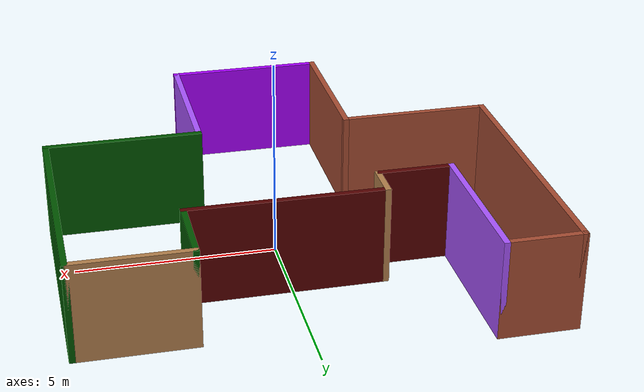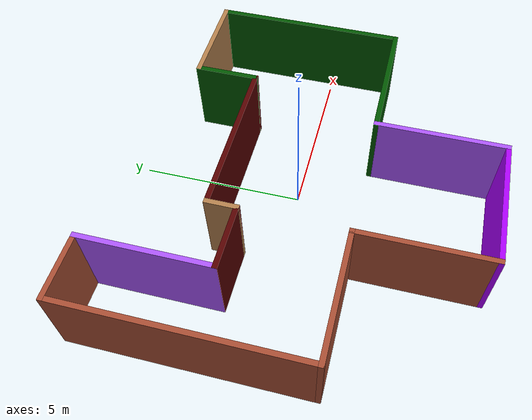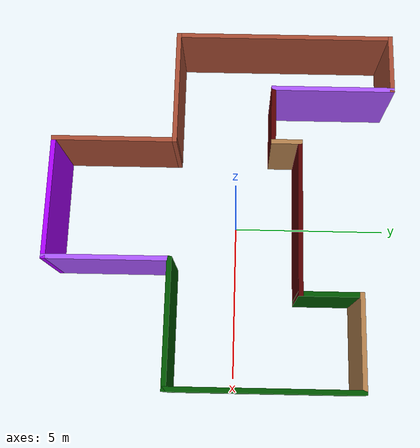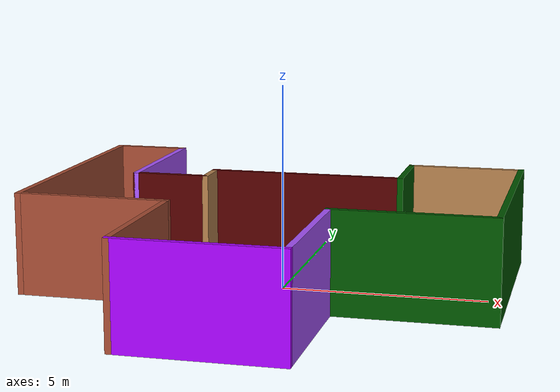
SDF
<?xml version='1.0'?>
<sdf version='1.6'>
  <model name='building'>
    <pose frame=''>-0.3 -0.425 0 0 -0 0</pose>
    <link name='Wall_10'>
      <collision name='Wall_10_Collision'>
        <geometry>
          <box>
            <size>2 0.15 2.5</size>
          </box>
        </geometry>
        <pose frame=''>0 0 1.25 0 -0 0</pose>
      </collision>
      <visual name='Wall_10_Visual'>
        <pose frame=''>0 0 1.25 0 -0 0</pose>
        <geometry>
          <box>
            <size>2 0.15 2.5</size>
          </box>
        </geometry>
        <material>
          <script>
            <uri>file://media/materials/scripts/gazebo.material</uri>
            <name>Gazebo/Grey</name>
          </script>
          <ambient>0 0.333333 0 1</ambient>
        </material>
        <meta>
          <layer>0</layer>
        </meta>
      </visual>
      <pose frame=''>2.85 3.35 0 0 -0 1.5708</pose>
    </link>
    <link name='Wall_11'>
      <collision name='Wall_11_Collision'>
        <geometry>
          <box>
            <size>3 0.15 2.5</size>
          </box>
        </geometry>
        <pose frame=''>0 0 1.25 0 -0 0</pose>
      </collision>
      <visual name='Wall_11_Visual'>
        <pose frame=''>0 0 1.25 0 -0 0</pose>
        <geometry>
          <box>
            <size>3 0.15 2.5</size>
          </box>
        </geometry>
        <material>
          <script>
            <uri>file://media/materials/scripts/gazebo.material</uri>
            <name>Gazebo/Wood</name>
          </script>
          <ambient>1 1 1 1</ambient>
        </material>
        <meta>
          <layer>0</layer>
        </meta>
      </visual>
      <pose frame=''>4.275 4.275 0 0 -0 0</pose>
    </link>
    <link name='Wall_12'>
      <collision name='Wall_12_Collision'>
        <geometry>
          <box>
            <size>6 0.15 2.5</size>
          </box>
        </geometry>
        <pose frame=''>0 0 1.25 0 -0 0</pose>
      </collision>
      <visual name='Wall_12_Visual'>
        <pose frame=''>0 0 1.25 0 -0 0</pose>
        <geometry>
          <box>
            <size>6 0.15 2.5</size>
          </box>
        </geometry>
        <material>
          <script>
            <uri>file://media/materials/scripts/gazebo.material</uri>
            <name>Gazebo/Grey</name>
          </script>
          <ambient>0 0.333333 0 1</ambient>
        </material>
        <meta>
          <layer>0</layer>
        </meta>
      </visual>
      <pose frame=''>5.7 1.35 0 0 0 -1.5708</pose>
    </link>
    <link name='Wall_13'>
      <collision name='Wall_13_Collision'>
        <geometry>
          <box>
            <size>4 0.15 2.5</size>
          </box>
        </geometry>
        <pose frame=''>0 0 1.25 0 -0 0</pose>
      </collision>
      <visual name='Wall_13_Visual'>
        <pose frame=''>0 0 1.25 0 -0 0</pose>
        <geometry>
          <box>
            <size>4 0.15 2.5</size>
          </box>
        </geometry>
        <material>
          <script>
            <uri>file://media/materials/scripts/gazebo.material</uri>
            <name>Gazebo/Grey</name>
          </script>
          <ambient>0 0.333333 0 1</ambient>
        </material>
        <meta>
          <layer>0</layer>
        </meta>
      </visual>
      <pose frame=''>3.775 -1.575 0 0 -0 3.14159</pose>
    </link>
    <link name='Wall_14'>
      <collision name='Wall_14_Collision'>
        <geometry>
          <box>
            <size>4 0.15 2.5</size>
          </box>
        </geometry>
        <pose frame=''>0 0 1.25 0 -0 0</pose>
      </collision>
      <visual name='Wall_14_Visual'>
        <pose frame=''>0 0 1.25 0 -0 0</pose>
        <geometry>
          <box>
            <size>4 0.15 2.5</size>
          </box>
        </geometry>
        <material>
          <script>
            <uri>file://media/materials/scripts/gazebo.material</uri>
            <name>Gazebo/Grey</name>
          </script>
          <ambient>0.666667 0.333333 1 1</ambient>
        </material>
        <meta>
          <layer>0</layer>
        </meta>
      </visual>
      <pose frame=''>1.85 -3.5 0 0 0 -1.5708</pose>
    </link>
    <link name='Wall_15'>
      <collision name='Wall_15_Collision'>
        <geometry>
          <box>
            <size>4 0.15 2.5</size>
          </box>
        </geometry>
        <pose frame=''>0 0 1.25 0 -0 0</pose>
      </collision>
      <visual name='Wall_15_Visual'>
        <pose frame=''>0 0 1.25 0 -0 0</pose>
        <geometry>
          <box>
            <size>4 0.15 2.5</size>
          </box>
        </geometry>
        <material>
          <script>
            <uri>file://media/materials/scripts/gazebo.material</uri>
            <name>Gazebo/Grey</name>
          </script>
          <ambient>0.666667 0 1 1</ambient>
        </material>
        <meta>
          <layer>0</layer>
        </meta>
      </visual>
      <pose frame=''>-0.075 -5.425 0 0 -0 3.14159</pose>
    </link>
    <link name='Wall_16'>
      <collision name='Wall_16_Collision'>
        <geometry>
          <box>
            <size>4 0.15 2.5</size>
          </box>
        </geometry>
        <pose frame=''>0 0 1.25 0 -0 0</pose>
      </collision>
      <visual name='Wall_16_Visual'>
        <pose frame=''>0 0 1.25 0 -0 0</pose>
        <geometry>
          <box>
            <size>4 0.15 2.5</size>
          </box>
        </geometry>
        <material>
          <script>
            <uri>file://media/materials/scripts/gazebo.material</uri>
            <name>Gazebo/Bricks</name>
          </script>
          <ambient>1 1 1 1</ambient>
        </material>
        <meta>
          <layer>0</layer>
        </meta>
      </visual>
      <pose frame=''>-2 -3.5 0 0 -0 1.5708</pose>
    </link>
    <link name='Wall_17'>
      <collision name='Wall_17_Collision'>
        <geometry>
          <box>
            <size>3.85 0.15 2.5</size>
          </box>
        </geometry>
        <pose frame=''>0 0 1.25 0 -0 0</pose>
      </collision>
      <visual name='Wall_17_Visual'>
        <pose frame=''>0 0 1.25 0 -0 0</pose>
        <geometry>
          <box>
            <size>3.85 0.15 2.5</size>
          </box>
        </geometry>
        <material>
          <script>
            <uri>file://media/materials/scripts/gazebo.material</uri>
            <name>Gazebo/Bricks</name>
          </script>
          <ambient>1 1 1 1</ambient>
        </material>
        <meta>
          <layer>0</layer>
        </meta>
      </visual>
      <pose frame=''>-3.85 -1.575 0 0 -0 3.14159</pose>
    </link>
    <link name='Wall_3'>
      <collision name='Wall_3_Collision'>
        <geometry>
          <box>
            <size>7.15 0.15 2.5</size>
          </box>
        </geometry>
        <pose frame=''>0 0 1.25 0 -0 0</pose>
      </collision>
      <visual name='Wall_3_Visual'>
        <pose frame=''>0 0 1.25 0 -0 0</pose>
        <geometry>
          <box>
            <size>7.15 0.15 2.5</size>
          </box>
        </geometry>
        <material>
          <script>
            <uri>file://media/materials/scripts/gazebo.material</uri>
            <name>Gazebo/Bricks</name>
          </script>
          <ambient>1 1 1 1</ambient>
        </material>
        <meta>
          <layer>0</layer>
        </meta>
      </visual>
      <pose frame=''>-5.7 1.925 0 0 -0 1.5708</pose>
    </link>
    <link name='Wall_5'>
      <collision name='Wall_5_Collision'>
        <geometry>
          <box>
            <size>2 0.15 2.5</size>
          </box>
        </geometry>
        <pose frame=''>0 0 1.25 0 -0 0</pose>
      </collision>
      <visual name='Wall_5_Visual'>
        <pose frame=''>0 0 1.25 0 -0 0</pose>
        <geometry>
          <box>
            <size>2 0.15 2.5</size>
          </box>
        </geometry>
        <material>
          <script>
            <uri>file://media/materials/scripts/gazebo.material</uri>
            <name>Gazebo/Bricks</name>
          </script>
          <ambient>1 1 1 1</ambient>
        </material>
        <meta>
          <layer>0</layer>
        </meta>
      </visual>
      <pose frame=''>-4.775 5.425 0 0 -0 0</pose>
    </link>
    <link name='Wall_6'>
      <collision name='Wall_6_Collision'>
        <geometry>
          <box>
            <size>4 0.15 2.5</size>
          </box>
        </geometry>
        <pose frame=''>0 0 1.25 0 -0 0</pose>
      </collision>
      <visual name='Wall_6_Visual'>
        <pose frame=''>0 0 1.25 0 -0 0</pose>
        <geometry>
          <box>
            <size>4 0.15 2.5</size>
          </box>
        </geometry>
        <material>
          <script>
            <uri>file://media/materials/scripts/gazebo.material</uri>
            <name>Gazebo/Grey</name>
          </script>
          <ambient>0.666667 0.333333 1 1</ambient>
        </material>
        <meta>
          <layer>0</layer>
        </meta>
      </visual>
      <pose frame=''>-3.85 3.5 0 0 0 -1.5708</pose>
    </link>
    <link name='Wall_7'>
      <collision name='Wall_7_Collision'>
        <geometry>
          <box>
            <size>2 0.15 2.5</size>
          </box>
        </geometry>
        <pose frame=''>0 0 1.25 0 -0 0</pose>
      </collision>
      <visual name='Wall_7_Visual'>
        <pose frame=''>0 0 1.25 0 -0 0</pose>
        <geometry>
          <box>
            <size>2 0.15 2.5</size>
          </box>
        </geometry>
        <material>
          <script>
            <uri>file://media/materials/scripts/gazebo.material</uri>
            <name>Gazebo/Grey</name>
          </script>
          <ambient>0.333333 0 0 1</ambient>
        </material>
        <meta>
          <layer>0</layer>
        </meta>
      </visual>
      <pose frame=''>-2.925 1.575 0 0 -0 0</pose>
    </link>
    <link name='Wall_8'>
      <collision name='Wall_8_Collision'>
        <geometry>
          <box>
            <size>1 0.15 2.5</size>
          </box>
        </geometry>
        <pose frame=''>0 0 1.25 0 -0 0</pose>
      </collision>
      <visual name='Wall_8_Visual'>
        <pose frame=''>0 0 1.25 0 -0 0</pose>
        <geometry>
          <box>
            <size>1 0.15 2.5</size>
          </box>
        </geometry>
        <material>
          <script>
            <uri>file://media/materials/scripts/gazebo.material</uri>
            <name>Gazebo/Wood</name>
          </script>
          <ambient>1 1 1 1</ambient>
        </material>
        <meta>
          <layer>0</layer>
        </meta>
      </visual>
      <pose frame=''>-2 2 0 0 -0 1.5708</pose>
    </link>
    <link name='Wall_9'>
      <collision name='Wall_9_Collision'>
        <geometry>
          <box>
            <size>5 0.15 2.5</size>
          </box>
        </geometry>
        <pose frame=''>0 0 1.25 0 -0 0</pose>
      </collision>
      <visual name='Wall_9_Visual'>
        <pose frame=''>0 0 1.25 0 -0 0</pose>
        <geometry>
          <box>
            <size>5 0.15 2.5</size>
          </box>
        </geometry>
        <material>
          <script>
            <uri>file://media/materials/scripts/gazebo.material</uri>
            <name>Gazebo/Grey</name>
          </script>
          <ambient>0.333333 0 0 1</ambient>
        </material>
        <meta>
          <layer>0</layer>
        </meta>
      </visual>
      <pose frame=''>0.425 2.425 0 0 -0 0</pose>
    </link>
    <static>1</static>
  </model>
</sdf>
